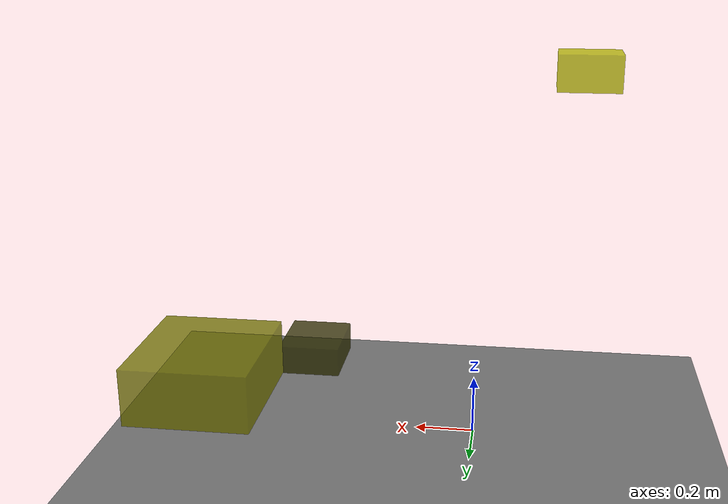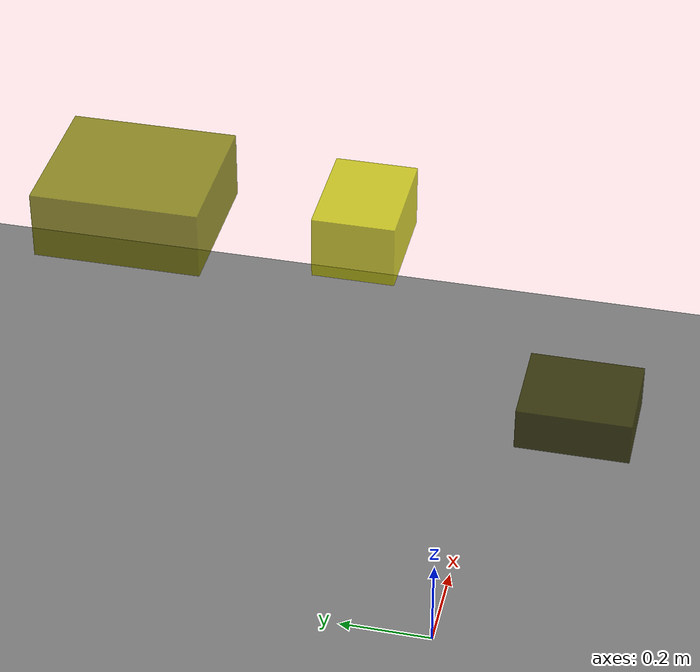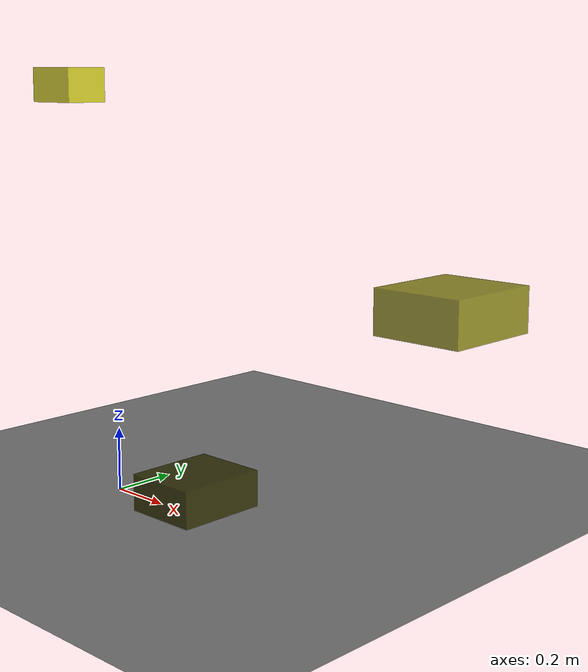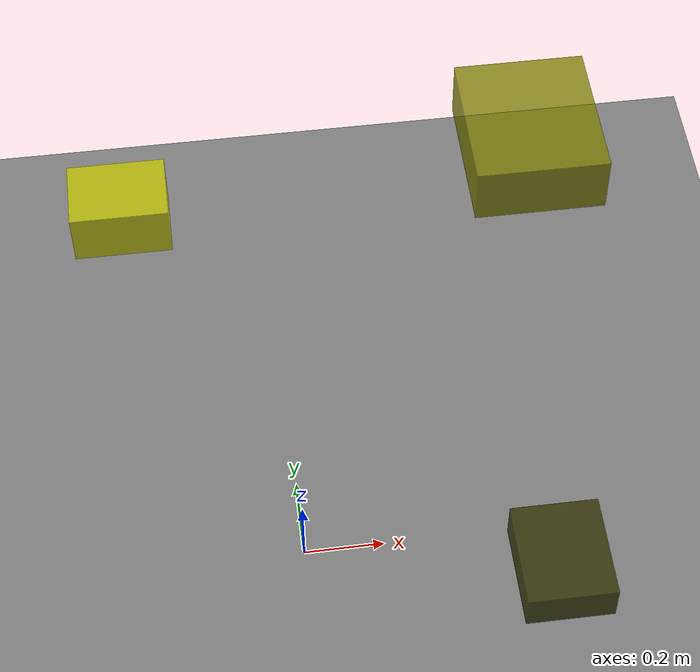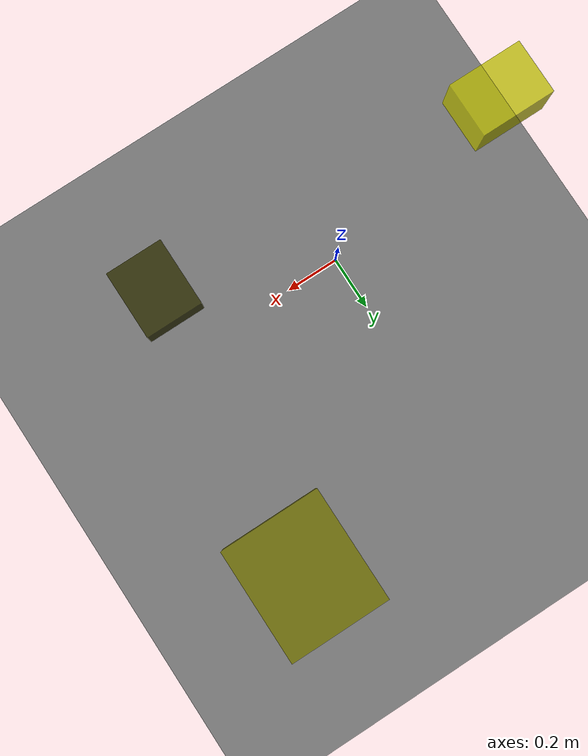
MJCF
<?xml version="1.0"?>
<mujoco model="obstacle_scene">
  <compiler angle="radian" coordinate="local"/>
  <option timestep="0.001" gravity="0 0 -9.81"/>

  <asset>
    <material name="obstacle_mat" rgba="0.8 0.8 0.0 0.8"/>
    <material name="ground_mat" rgba="0.5 0.5 0.5 1"/>
  </asset>

  <worldbody>
    <!-- Ground plane -->
    <geom name="ground" type="plane" size="3 3 0.1" material="ground_mat"/>

    <!-- Obstacles -->
    <body name="obstacle_0" pos="0.596779 -0.212824 0.191559">
      <geom name="obs_0" type="box" size="0.107042 0.128266 0.050529" rgba="0.2 0.2 0.0 0.8"/>
    </body>
    <body name="obstacle_1" pos="0.677076 0.816434 0.555402">
      <geom name="obs_1" type="box" size="0.166212 0.188194 0.077939" rgba="0.5 0.5 0.0 0.8"/>
    </body>
    <body name="obstacle_2" pos="-0.326030 0.080710 1.267268">
      <geom name="obs_2" type="box" size="0.095680 0.070737 0.055732" rgba="0.8 0.8 0.0 0.8"/>
    </body>
  </worldbody>
</mujoco>
